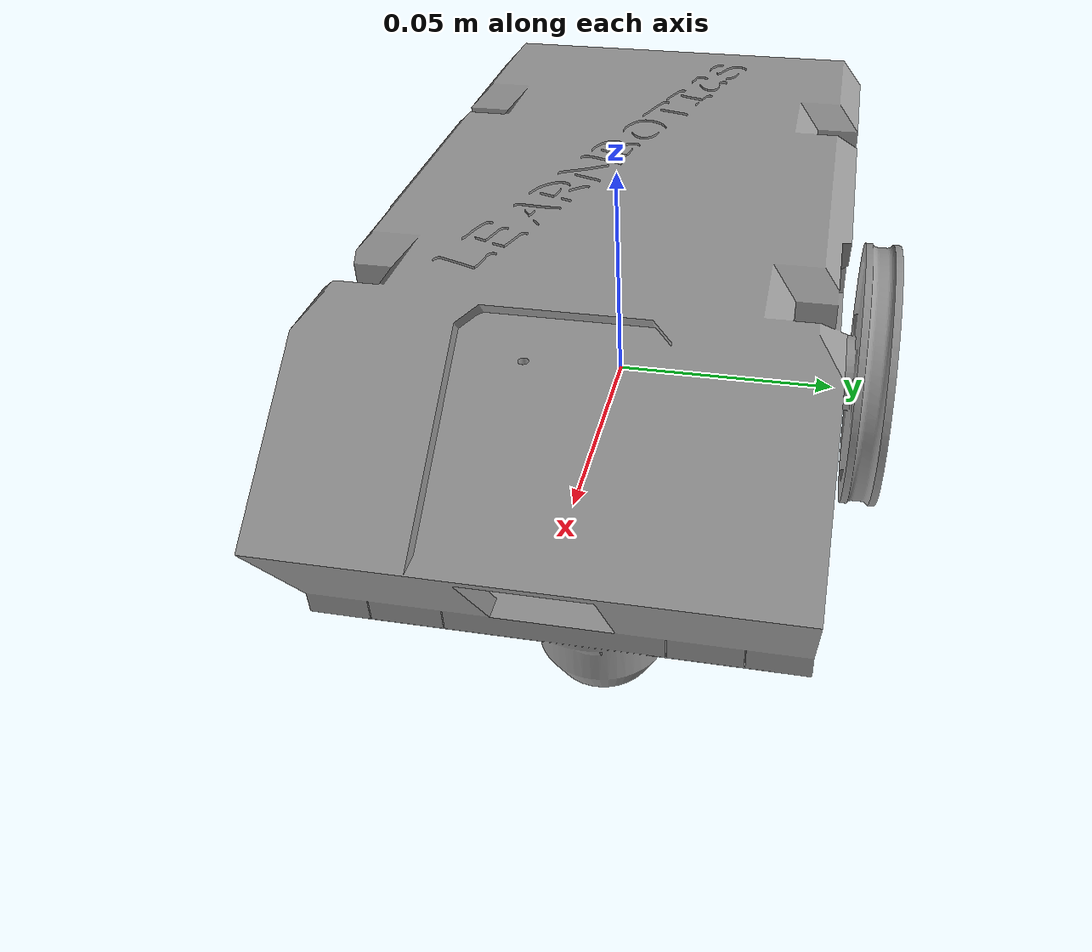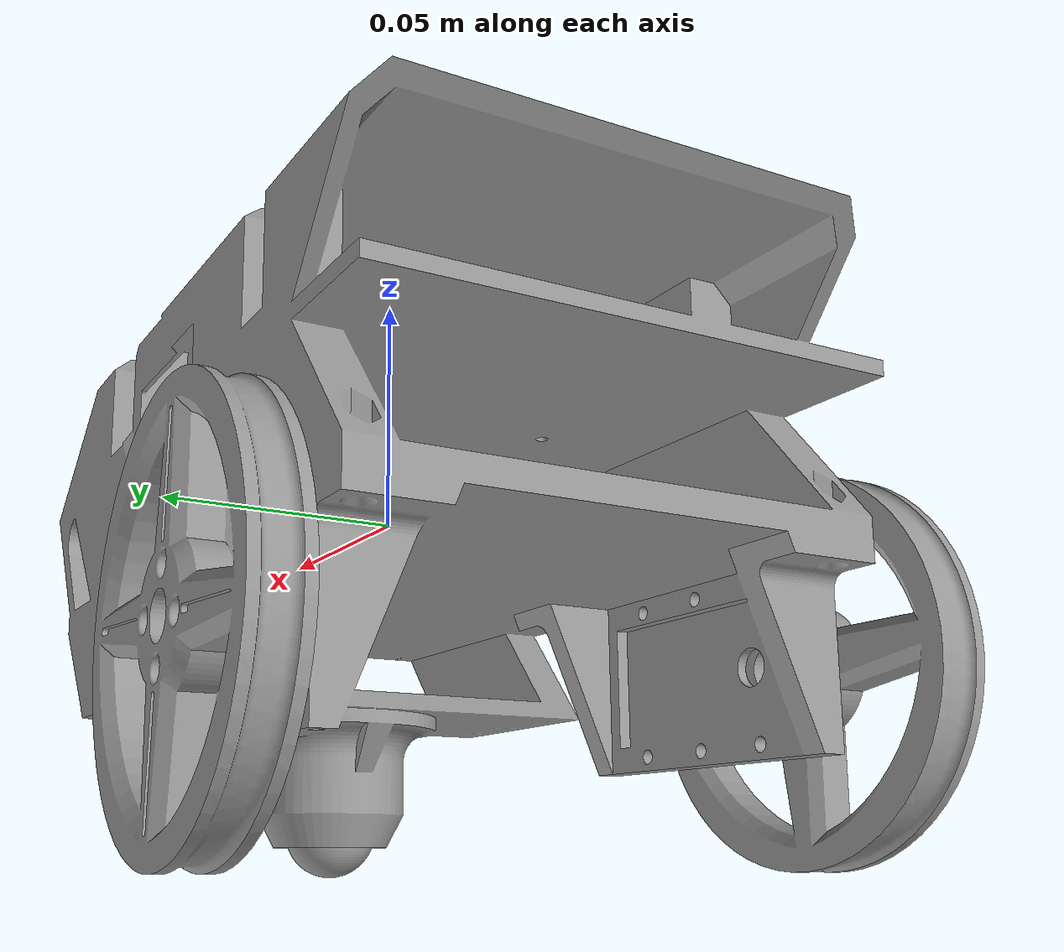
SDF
<?xml version='1.0'?>
<sdf version='1.6'>
  <model name='learnbotics'>
    <link name='chassis'>
      <inertial>
        <mass>0.32697605</mass>
        <inertia>
          <ixx>6.63318913e-04</ixx>
          <ixy>0</ixy>
          <ixz>5.13108151e-05</ixz>
          <iyy>1.02936619e-03</iyy>
          <iyz>8.02098638e-07</iyz>
          <izz>1.20173687e-03</izz>
        </inertia>
        <pose frame=''>0 0 0 0 0 0</pose>
      </inertial>
      <pose frame=''>0 0 0 0 0 0</pose>
      <gravity>1</gravity>
      <self_collide>0</self_collide>
      <kinematic>0</kinematic>
      <enable_wind>0</enable_wind>
      <visual name='visual'>
        <pose frame=''>0 0 0 0 0 0</pose>
        <geometry>
          <mesh>
            <uri>/home/tecchio/code/catkin_learnbotics/src/learnrobotics/model/stl/modified/complete_robot.stl</uri>
            <scale>1 1 1</scale>
          </mesh>
        </geometry>
        <material>
          <lighting>1</lighting>
          <script>
            <uri>file://media/materials/scripts/gazebo.material</uri>
            <name>Gazebo/Grey</name>
          </script>
          <shader type='vertex'>
            <normal_map>__default__</normal_map>
          </shader>
          <ambient>0.3 0.3 0.3 1</ambient>
          <diffuse>0.7 0.7 0.7 1</diffuse>
          <specular>0.01 0.01 0.01 1</specular>
          <emissive>0 0 0 1</emissive>
        </material>
        <transparency>0</transparency>
        <cast_shadows>1</cast_shadows>
      </visual>
      <collision name='collision'>
        <laser_retro>0</laser_retro>
        <max_contacts>10</max_contacts>
        <pose frame=''>0 0 0 0 -0 0</pose>
        <geometry>
          <mesh>
            <uri>/home/tecchio/code/catkin_learnbotics/src/learnrobotics/model/stl/modified/complete_robot.stl</uri>
            <scale>1 1 1</scale>
          </mesh>
        </geometry>
        <surface>
          <friction>
            <ode>
              <mu>1</mu>
              <mu2>1</mu2>
              <fdir1>0 0 0</fdir1>
              <slip1>0</slip1>
              <slip2>0</slip2>
            </ode>
            <torsional>
              <coefficient>1</coefficient>
              <patch_radius>0</patch_radius>
              <surface_radius>0</surface_radius>
              <use_patch_radius>1</use_patch_radius>
              <ode>
                <slip>0</slip>
              </ode>
            </torsional>
          </friction>
          <bounce>
            <restitution_coefficient>0</restitution_coefficient>
            <threshold>1e+06</threshold>
          </bounce>
          <contact>
            <collide_without_contact>0</collide_without_contact>
            <collide_without_contact_bitmask>1</collide_without_contact_bitmask>
            <collide_bitmask>1</collide_bitmask>
            <ode>
              <soft_cfm>0</soft_cfm>
              <soft_erp>0.2</soft_erp>
              <kp>1e+13</kp>
              <kd>1</kd>
              <max_vel>0.01</max_vel>
              <min_depth>0</min_depth>
            </ode>
            <bullet>
              <split_impulse>1</split_impulse>
              <split_impulse_penetration_threshold>-0.01</split_impulse_penetration_threshold>
              <soft_cfm>0</soft_cfm>
              <soft_erp>0.2</soft_erp>
              <kp>1e+13</kp>
              <kd>1</kd>
            </bullet>
          </contact>
        </surface>
      </collision>
    </link>
    <link name='sphere'>
      <inertial>
        <mass>0.00439458</mass>
        <inertia>
          <ixx>1.75495855e-07</ixx>
          <ixy>7.17444448e-16</ixy>
          <ixz>0</ixz>
          <iyy>1.75495862e-07</iyy>
          <iyz>0</iyz>
          <izz>1.75398549e-07</izz>
        </inertia>
        <pose frame=''>0 0 0 0 0 0</pose>
      </inertial>
      <pose frame=''>0.02826274 0.00014962 -0.06413199 0 0 0</pose>
      <gravity>1</gravity>
      <self_collide>0</self_collide>
      <kinematic>0</kinematic>
      <enable_wind>0</enable_wind>
      <visual name='visual'>
        <pose frame=''>0 0 0 0 0 0</pose>
        <geometry>
          <mesh>
            <uri>/home/tecchio/code/catkin_learnbotics/src/learnrobotics/model/stl/modified/EsferaNoCentro.stl</uri>
            <scale>1 1 1</scale>
          </mesh>
        </geometry>
        <material>
          <lighting>1</lighting>
          <script>
            <uri>file://media/materials/scripts/gazebo.material</uri>
            <name>Gazebo/Grey</name>
          </script>
          <shader type='vertex'>
            <normal_map>__default__</normal_map>
          </shader>
          <ambient>0.3 0.3 0.3 1</ambient>
          <diffuse>0.7 0.7 0.7 1</diffuse>
          <specular>0.01 0.01 0.01 1</specular>
          <emissive>0 0 0 1</emissive>
        </material>
        <transparency>0</transparency>
        <cast_shadows>1</cast_shadows>
      </visual>
      <collision name='collision'>
        <laser_retro>0</laser_retro>
        <max_contacts>10</max_contacts>
        <pose frame=''>0 0 0 0 -0 0</pose>
        <geometry>
          <mesh>
            <uri>/home/tecchio/code/catkin_learnbotics/src/learnrobotics/model/stl/modified/EsferaNoCentro.stl</uri>
            <scale>1 1 1</scale>
          </mesh>
        </geometry>
        <surface>
          <friction>
            <ode>
              <mu>1</mu>
              <mu2>1</mu2>
              <fdir1>0 0 0</fdir1>
              <slip1>0</slip1>
              <slip2>0</slip2>
            </ode>
            <torsional>
              <coefficient>1</coefficient>
              <patch_radius>0</patch_radius>
              <surface_radius>0</surface_radius>
              <use_patch_radius>1</use_patch_radius>
              <ode>
                <slip>0</slip>
              </ode>
            </torsional>
          </friction>
          <bounce>
            <restitution_coefficient>0</restitution_coefficient>
            <threshold>1e+06</threshold>
          </bounce>
          <contact>
            <collide_without_contact>0</collide_without_contact>
            <collide_without_contact_bitmask>1</collide_without_contact_bitmask>
            <collide_bitmask>1</collide_bitmask>
            <ode>
              <soft_cfm>0</soft_cfm>
              <soft_erp>0.2</soft_erp>
              <kp>1e+13</kp>
              <kd>1</kd>
              <max_vel>0.01</max_vel>
              <min_depth>0</min_depth>
            </ode>
            <bullet>
              <split_impulse>1</split_impulse>
              <split_impulse_penetration_threshold>-0.01</split_impulse_penetration_threshold>
              <soft_cfm>0</soft_cfm>
              <soft_erp>0.2</soft_erp>
              <kp>1e+13</kp>
              <kd>1</kd>
            </bullet>
          </contact>
        </surface>
      </collision>
    </link>
    <link name='wheel_1'>
      <inertial>
        <mass>0.02705420</mass>
        <inertia>
          <ixx>1.09514547e-05</ixx>
          <ixy>3.12490491e-11</ixy>
          <ixz>0</ixz>
          <iyy>2.13765927e-05</iyy>
          <iyz>0</iyz>
          <izz>1.09513089e-05</izz>
        </inertia>
        <pose frame=''>0 0 0 0 0 0</pose>
      </inertial>
      <pose frame=''>-0.05762664 -0.06151239 -0.03470413 0 0 0</pose>
      <gravity>1</gravity>
      <self_collide>0</self_collide>
      <kinematic>0</kinematic>
      <enable_wind>0</enable_wind>
      <visual name='visual'>
        <pose frame=''>0 0 0 0 -0 0</pose>
        <geometry>
          <mesh>
            <uri>/home/tecchio/code/catkin_learnbotics/src/learnrobotics/model/stl/modified/RodaNoCentro.stl</uri>
            <scale>1 1 1</scale>
          </mesh>
        </geometry>
        <material>
          <lighting>1</lighting>
          <script>
            <uri>file://media/materials/scripts/gazebo.material</uri>
            <name>Gazebo/Grey</name>
          </script>
          <shader type='vertex'>
            <normal_map>__default__</normal_map>
          </shader>
          <ambient>0.3 0.3 0.3 1</ambient>
          <diffuse>0.7 0.7 0.7 1</diffuse>
          <specular>0.01 0.01 0.01 1</specular>
          <emissive>0 0 0 1</emissive>
        </material>
        <transparency>0</transparency>
        <cast_shadows>1</cast_shadows>
      </visual>
      <collision name='collision'>
        <laser_retro>0</laser_retro>
        <max_contacts>10</max_contacts>
        <pose frame=''>0 0 0 0 -0 0</pose>
        <geometry>
          <mesh>
            <uri>/home/tecchio/code/catkin_learnbotics/src/learnrobotics/model/stl/modified/RodaNoCentro.stl</uri>
            <scale>1 1 1</scale>
          </mesh>
        </geometry>
        <surface>
          <friction>
            <ode>
              <mu>1</mu>
              <mu2>1</mu2>
              <fdir1>0 0 0</fdir1>
              <slip1>0</slip1>
              <slip2>0</slip2>
            </ode>
            <torsional>
              <coefficient>1</coefficient>
              <patch_radius>0</patch_radius>
              <surface_radius>0</surface_radius>
              <use_patch_radius>1</use_patch_radius>
              <ode>
                <slip>0</slip>
              </ode>
            </torsional>
          </friction>
          <bounce>
            <restitution_coefficient>0</restitution_coefficient>
            <threshold>1e+06</threshold>
          </bounce>
          <contact>
            <collide_without_contact>0</collide_without_contact>
            <collide_without_contact_bitmask>1</collide_without_contact_bitmask>
            <collide_bitmask>1</collide_bitmask>
            <ode>
              <soft_cfm>0</soft_cfm>
              <soft_erp>0.2</soft_erp>
              <kp>1e+13</kp>
              <kd>1</kd>
              <max_vel>0.01</max_vel>
              <min_depth>0</min_depth>
            </ode>
            <bullet>
              <split_impulse>1</split_impulse>
              <split_impulse_penetration_threshold>-0.01</split_impulse_penetration_threshold>
              <soft_cfm>0</soft_cfm>
              <soft_erp>0.2</soft_erp>
              <kp>1e+13</kp>
              <kd>1</kd>
            </bullet>
          </contact>
        </surface>
      </collision>
    </link>
    <link name='wheel_2'>
      <inertial>
        <mass>0.02705420</mass>
        <inertia>
          <ixx>1.09514547e-05</ixx>
          <ixy>3.12490491e-11</ixy>
          <ixz>0</ixz>
          <iyy>2.13765927e-05</iyy>
          <iyz>0</iyz>
          <izz>1.09513089e-05</izz>
        </inertia>
        <pose frame=''>0 0 0 0 0 0</pose>
      </inertial>
      <pose frame=''>-0.05762664 0.06151239 -0.03470413 0 0 0</pose>
      <gravity>1</gravity>
      <self_collide>0</self_collide>
      <kinematic>0</kinematic>
      <enable_wind>0</enable_wind>
      <visual name='visual'>
        <pose frame=''>0 0 0 0 -0 0</pose>
        <geometry>
          <mesh>
            <uri>/home/tecchio/code/catkin_learnbotics/src/learnrobotics/model/stl/modified/RodaNoCentroEspelhada.stl</uri>
            <scale>1 1 1</scale>
          </mesh>
        </geometry>
        <material>
          <lighting>1</lighting>
          <script>
            <uri>file://media/materials/scripts/gazebo.material</uri>
            <name>Gazebo/Grey</name>
          </script>
          <shader type='vertex'>
            <normal_map>__default__</normal_map>
          </shader>
          <ambient>0.3 0.3 0.3 1</ambient>
          <diffuse>0.7 0.7 0.7 1</diffuse>
          <specular>0.01 0.01 0.01 1</specular>
          <emissive>0 0 0 1</emissive>
        </material>
        <transparency>0</transparency>
        <cast_shadows>1</cast_shadows>
      </visual>
      <collision name='collision'>
        <laser_retro>0</laser_retro>
        <max_contacts>10</max_contacts>
        <pose frame=''>0 0 0 0 -0 0</pose>
        <geometry>
          <mesh>
            <uri>/home/tecchio/code/catkin_learnbotics/src/learnrobotics/model/stl/modified/RodaNoCentroEspelhada.stl</uri>
            <scale>1 1 1</scale>
          </mesh>
        </geometry>
        <surface>
          <friction>
            <ode>
              <mu>1</mu>
              <mu2>1</mu2>
              <fdir1>0 0 0</fdir1>
              <slip1>0</slip1>
              <slip2>0</slip2>
            </ode>
            <torsional>
              <coefficient>1</coefficient>
              <patch_radius>0</patch_radius>
              <surface_radius>0</surface_radius>
              <use_patch_radius>1</use_patch_radius>
              <ode>
                <slip>0</slip>
              </ode>
            </torsional>
          </friction>
          <bounce>
            <restitution_coefficient>0</restitution_coefficient>
            <threshold>1e+06</threshold>
          </bounce>
          <contact>
            <collide_without_contact>0</collide_without_contact>
            <collide_without_contact_bitmask>1</collide_without_contact_bitmask>
            <collide_bitmask>1</collide_bitmask>
            <ode>
              <soft_cfm>0</soft_cfm>
              <soft_erp>0.2</soft_erp>
              <kp>1e+13</kp>
              <kd>1</kd>
              <max_vel>0.01</max_vel>
              <min_depth>0</min_depth>
            </ode>
            <bullet>
              <split_impulse>1</split_impulse>
              <split_impulse_penetration_threshold>-0.01</split_impulse_penetration_threshold>
              <soft_cfm>0</soft_cfm>
              <soft_erp>0.2</soft_erp>
              <kp>1e+13</kp>
              <kd>1</kd>
            </bullet>
          </contact>
        </surface>
      </collision>
    </link>
    <joint name='chassis_JOINT_0' type='ball'>
      <parent>chassis</parent>
      <child>sphere</child>
      <pose frame=''>0 0 0 0 -0 0</pose>
      <physics>
        <ode>
          <limit>
            <cfm>0</cfm>
            <erp>0.2</erp>
          </limit>
          <suspension>
            <cfm>0</cfm>
            <erp>0.2</erp>
          </suspension>
        </ode>
      </physics>
    </joint>
    <joint name='chassis_JOINT_1' type='revolute'>
      <parent>chassis</parent>
      <child>wheel_1</child>
      <pose frame=''>0 0 0 0 -0 0</pose>
      <axis>
        <xyz>0 1 0</xyz>
        <use_parent_model_frame>0</use_parent_model_frame>
        <limit>
          <lower>-1.79769e+308</lower>
          <upper>1.79769e+308</upper>
          <effort>-1</effort>
          <velocity>-1</velocity>
        </limit>
        <dynamics>
          <spring_reference>0</spring_reference>
          <spring_stiffness>0</spring_stiffness>
          <damping>0</damping>
        </dynamics>
      </axis>
      <physics>
        <ode>
          <limit>
            <cfm>0</cfm>
            <erp>0.2</erp>
          </limit>
          <suspension>
            <cfm>0</cfm>
            <erp>0.2</erp>
          </suspension>
        </ode>
      </physics>
    </joint>
    <joint name='chassis_JOINT_2' type='revolute'>
      <parent>chassis</parent>
      <child>wheel_2</child>
      <pose frame=''>0 0 0 0 -0 0</pose>
      <axis>
        <xyz>0 1 0</xyz>
        <use_parent_model_frame>0</use_parent_model_frame>
        <limit>
          <lower>-1.79769e+308</lower>
          <upper>1.79769e+308</upper>
          <effort>-1</effort>
          <velocity>-1</velocity>
        </limit>
        <dynamics>
          <spring_reference>0</spring_reference>
          <spring_stiffness>0</spring_stiffness>
          <damping>0</damping>
        </dynamics>
      </axis>
      <physics>
        <ode>
          <limit>
            <cfm>0</cfm>
            <erp>0.2</erp>
          </limit>
          <suspension>
            <cfm>0</cfm>
            <erp>0.2</erp>
          </suspension>
        </ode>
      </physics>
    </joint>
    <static>0</static>
    <allow_auto_disable>1</allow_auto_disable>
  </model>
</sdf>
